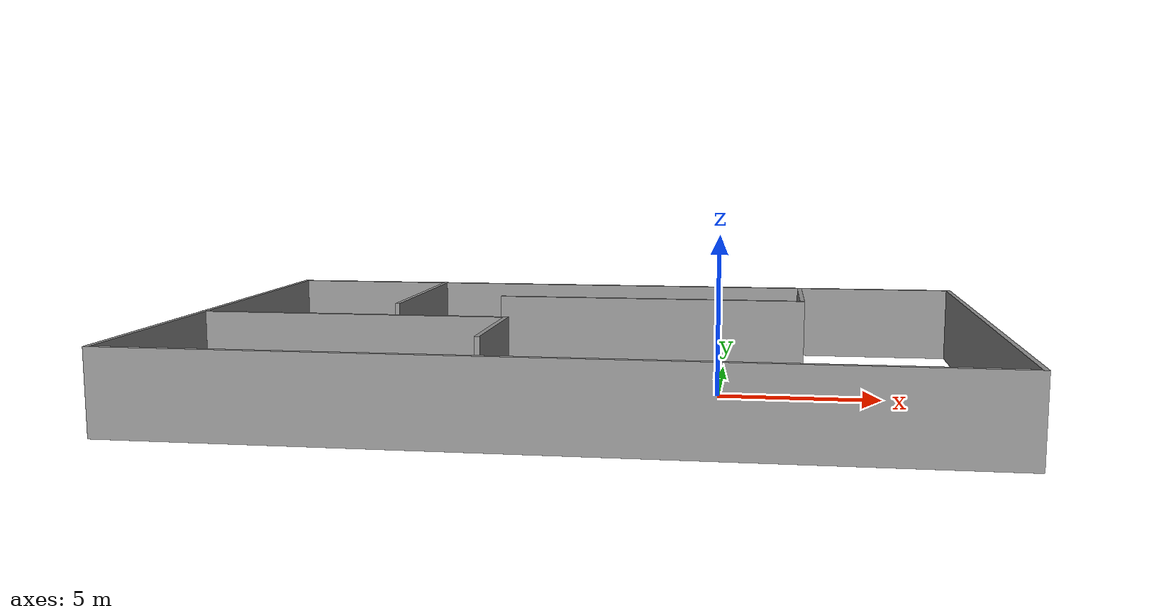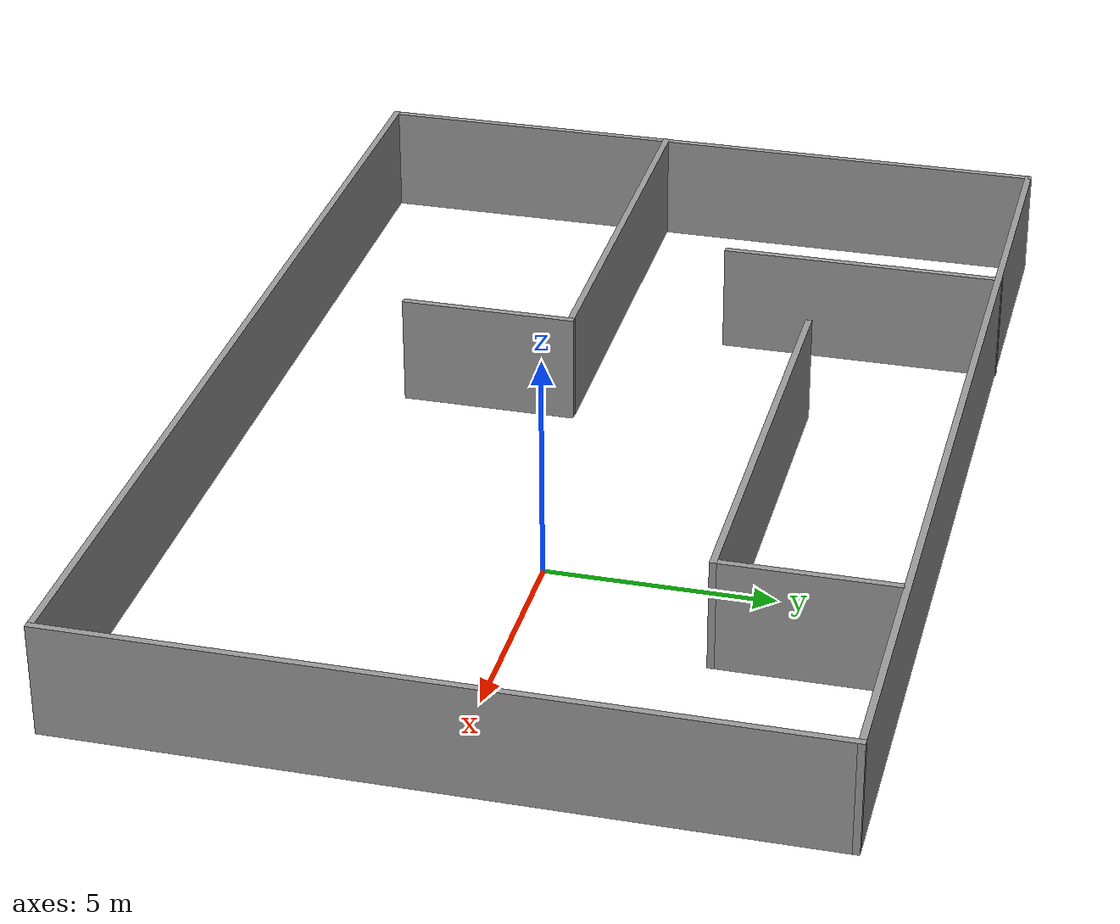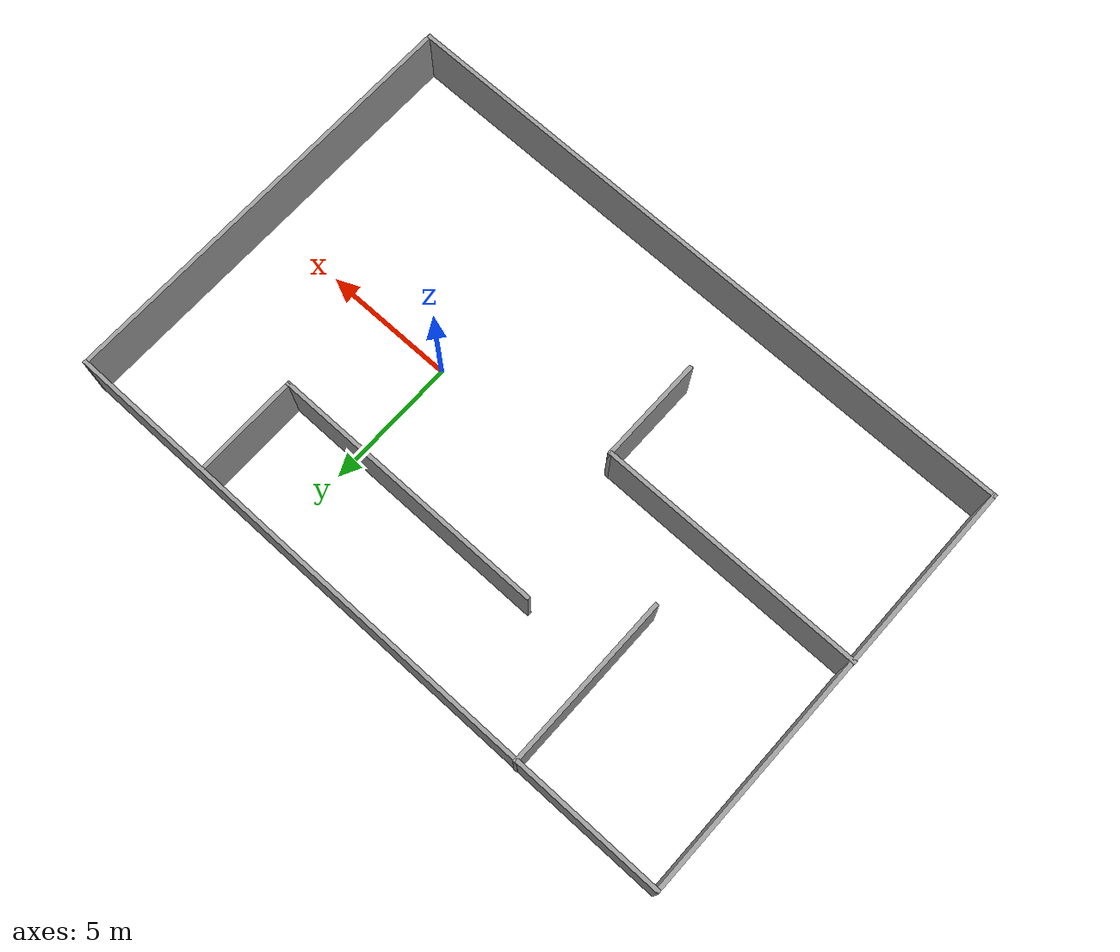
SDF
<?xml version='1.0'?>
<sdf version='1.7'>
  <model name='simple_walls'>
    <pose>-4.1815 -0.005065 0 0 -0 0</pose>
    <link name='Wall_1'>
      <collision name='Wall_1_Collision'>
        <geometry>
          <box>
            <size>24.5 0.15 2.5</size>
          </box>
        </geometry>
        <pose>0 0 1.25 0 -0 0</pose>
      </collision>
      <visual name='Wall_1_Visual'>
        <pose>0 0 1.25 0 -0 0</pose>
        <geometry>
          <box>
            <size>24.5 0.15 2.5</size>
          </box>
        </geometry>
        <material>
          <script>
            <uri>file://media/materials/scripts/gazebo.material</uri>
            <name>Gazebo/Grey</name>
          </script>
          <ambient>1 1 1 1</ambient>
        </material>
        <meta>
          <layer>0</layer>
        </meta>
      </visual>
      <pose>0.008207 -8.06068 0 0 -0 0</pose>
    </link>
    <link name='Wall_10'>
      <collision name='Wall_10_Collision'>
        <geometry>
          <box>
            <size>10 0.15 2.5</size>
          </box>
        </geometry>
        <pose>0 0 1.25 0 -0 0</pose>
      </collision>
      <visual name='Wall_10_Visual'>
        <pose>0 0 1.25 0 -0 0</pose>
        <geometry>
          <box>
            <size>10 0.15 2.5</size>
          </box>
        </geometry>
        <material>
          <script>
            <uri>file://media/materials/scripts/gazebo.material</uri>
            <name>Gazebo/Grey</name>
          </script>
          <ambient>1 1 1 1</ambient>
        </material>
        <meta>
          <layer>0</layer>
        </meta>
      </visual>
      <pose>-7.25821 -1.03066 0 0 -0 0</pose>
    </link>
    <link name='Wall_11'>
      <collision name='Wall_11_Collision'>
        <geometry>
          <box>
            <size>4 0.15 2.5</size>
          </box>
        </geometry>
        <pose>0 0 1.25 0 -0 0</pose>
      </collision>
      <visual name='Wall_11_Visual'>
        <pose>0 0 1.25 0 -0 0</pose>
        <geometry>
          <box>
            <size>4 0.15 2.5</size>
          </box>
        </geometry>
        <material>
          <script>
            <uri>file://media/materials/scripts/gazebo.material</uri>
            <name>Gazebo/Grey</name>
          </script>
          <ambient>1 1 1 1</ambient>
        </material>
        <meta>
          <layer>0</layer>
        </meta>
      </visual>
      <pose>-2.33321 -2.95566 0 0 -0 -1.5708</pose>
    </link>
    <link name='Wall_17'>
      <collision name='Wall_17_Collision'>
        <geometry>
          <box>
            <size>4 0.15 2.5</size>
          </box>
        </geometry>
        <pose>0 0 1.25 0 -0 0</pose>
      </collision>
      <visual name='Wall_17_Visual'>
        <pose>0 0 1.25 0 -0 0</pose>
        <geometry>
          <box>
            <size>4 0.15 2.5</size>
          </box>
        </geometry>
        <material>
          <script>
            <uri>file://media/materials/scripts/gazebo.material</uri>
            <name>Gazebo/Grey</name>
          </script>
          <ambient>1 1 1 1</ambient>
        </material>
        <meta>
          <layer>0</layer>
        </meta>
      </visual>
      <pose>6.84423 6.09545 0 0 -0 -1.5708</pose>
    </link>
    <link name='Wall_18'>
      <collision name='Wall_18_Collision'>
        <geometry>
          <box>
            <size>10.5 0.15 2.5</size>
          </box>
        </geometry>
        <pose>0 0 1.25 0 -0 0</pose>
      </collision>
      <visual name='Wall_18_Visual'>
        <pose>0 0 1.25 0 -0 0</pose>
        <geometry>
          <box>
            <size>10.5 0.15 2.5</size>
          </box>
        </geometry>
        <material>
          <script>
            <uri>file://media/materials/scripts/gazebo.material</uri>
            <name>Gazebo/Grey</name>
          </script>
          <ambient>1 1 1 1</ambient>
        </material>
        <meta>
          <layer>0</layer>
        </meta>
      </visual>
      <pose>1.66923 4.17045 0 0 -0 3.14159</pose>
    </link>
    <link name='Wall_2'>
      <collision name='Wall_2_Collision'>
        <geometry>
          <box>
            <size>16.25 0.15 2.5</size>
          </box>
        </geometry>
        <pose>0 0 1.25 0 -0 0</pose>
      </collision>
      <visual name='Wall_2_Visual'>
        <pose>0 0 1.25 0 -0 0</pose>
        <geometry>
          <box>
            <size>16.25 0.15 2.5</size>
          </box>
        </geometry>
        <material>
          <script>
            <uri>file://media/materials/scripts/gazebo.material</uri>
            <name>Gazebo/Grey</name>
          </script>
          <ambient>1 1 1 1</ambient>
        </material>
        <meta>
          <layer>0</layer>
        </meta>
      </visual>
      <pose>12.1832 -0.010678 0 0 -0 1.5708</pose>
    </link>
    <link name='Wall_3'>
      <collision name='Wall_3_Collision'>
        <geometry>
          <box>
            <size>24.5 0.15 2.5</size>
          </box>
        </geometry>
        <pose>0 0 1.25 0 -0 0</pose>
      </collision>
      <visual name='Wall_3_Visual'>
        <pose>0 0 1.25 0 -0 0</pose>
        <geometry>
          <box>
            <size>24.5 0.15 2.5</size>
          </box>
        </geometry>
        <material>
          <script>
            <uri>file://media/materials/scripts/gazebo.material</uri>
            <name>Gazebo/Grey</name>
          </script>
          <ambient>1 1 1 1</ambient>
        </material>
        <meta>
          <layer>0</layer>
        </meta>
      </visual>
      <pose>0.008207 8.03932 0 0 -0 3.14159</pose>
    </link>
    <link name='Wall_5'>
      <collision name='Wall_5_Collision'>
        <geometry>
          <box>
            <size>16.25 0.15 2.5</size>
          </box>
        </geometry>
        <pose>0 0 1.25 0 -0 0</pose>
      </collision>
      <visual name='Wall_5_Visual'>
        <pose>0 0 1.25 0 -0 0</pose>
        <geometry>
          <box>
            <size>16.25 0.15 2.5</size>
          </box>
        </geometry>
        <material>
          <script>
            <uri>file://media/materials/scripts/gazebo.material</uri>
            <name>Gazebo/Grey</name>
          </script>
          <ambient>1 1 1 1</ambient>
        </material>
        <meta>
          <layer>0</layer>
        </meta>
      </visual>
      <pose>-12.1668 -0.010678 0 0 -0 -1.5708</pose>
    </link>
    <link name='Wall_7'>
      <collision name='Wall_7_Collision'>
        <geometry>
          <box>
            <size>6.5 0.15 2.5</size>
          </box>
        </geometry>
        <pose>0 0 1.25 0 -0 0</pose>
      </collision>
      <visual name='Wall_7_Visual'>
        <pose>0 0 1.25 0 -0 0</pose>
        <geometry>
          <box>
            <size>6.5 0.15 2.5</size>
          </box>
        </geometry>
        <material>
          <script>
            <uri>file://media/materials/scripts/gazebo.material</uri>
            <name>Gazebo/Grey</name>
          </script>
          <ambient>1 1 1 1</ambient>
        </material>
        <meta>
          <layer>0</layer>
        </meta>
      </visual>
      <pose>-6.59163 4.88568 0 0 -0 -1.5708</pose>
    </link>
    <static>1</static>
  </model>
</sdf>
